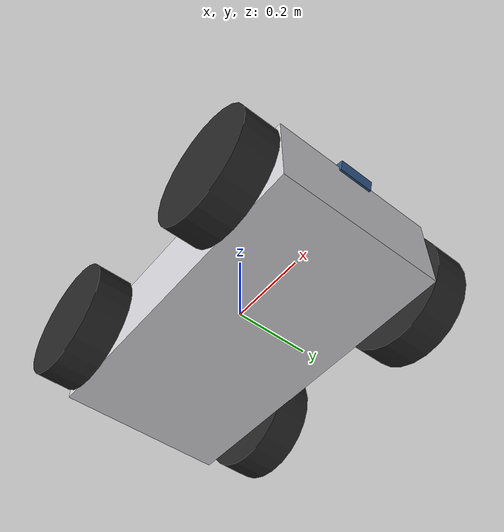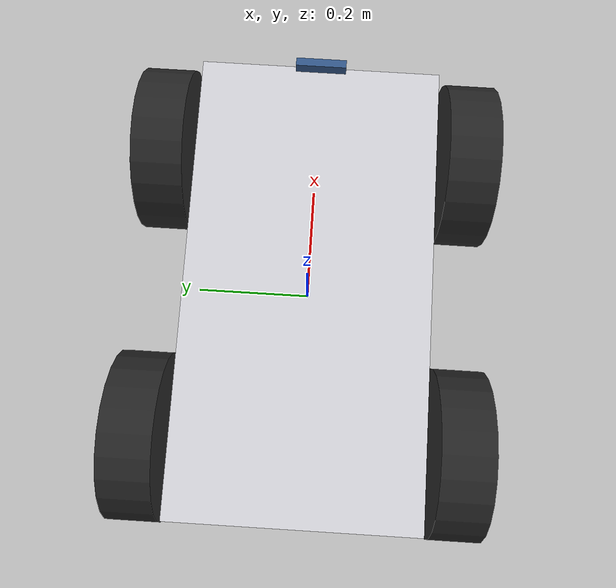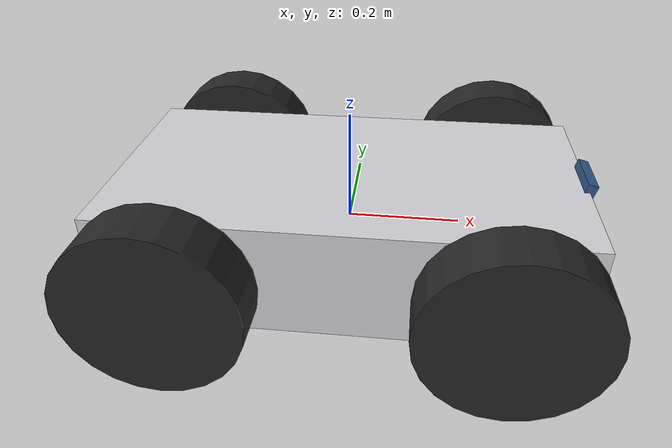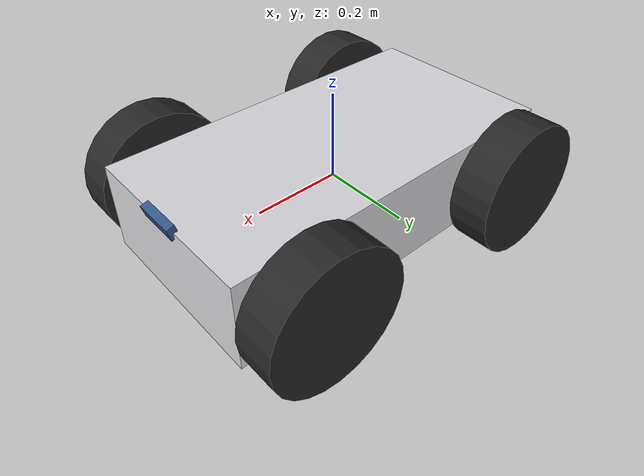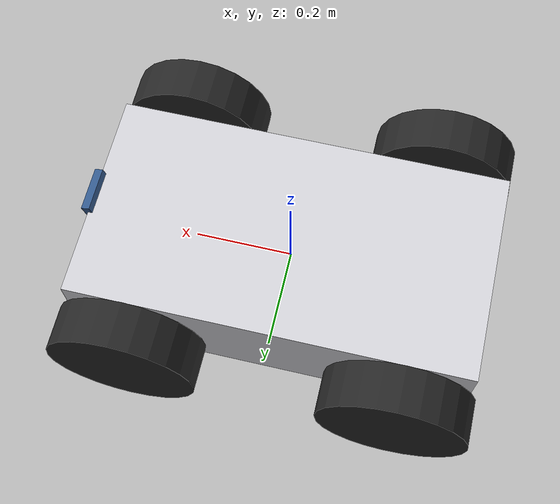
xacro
<?xml version="1.0"?>
<robot xmlns:xacro="http://www.ros.org/wiki/xacro" name="lunabot">

  <!-- Which hardware_interface plugin to instantiate: real | mock | sim.
       Defaults to mock so that a bare `xacro lunabot.urdf.xacro` produces
       something that runs anywhere, including CI. -->
  <xacro:arg name="hardware" default="mock"/>

  <!-- SocketCAN device. Use vcan0 to exercise the real plugin without
       motors attached - see docs/HARDWARE_CAN.md. -->
  <xacro:arg name="can_interface" default="can0"/>

  <!-- Frame/joint name prefix, for multi-robot or namespaced setups.
       Empty in every current configuration. -->
  <xacro:arg name="prefix" default=""/>

  <!-- Set false to get geometry and TF only, with no controller stack.
       Useful for `ros2 launch ... description.launch.py` when you just
       want to look at the model. -->
  <xacro:arg name="use_ros2_control" default="true"/>

  <!-- Topics bridging ros2_control to Isaac. Must match the OmniGraph
       nodes built in lunabot_sim/graphs/joints.py. -->
  <xacro:arg name="sim_joint_states_topic"   default="/isaac/joint_states"/>
  <xacro:arg name="sim_joint_commands_topic" default="/isaac/joint_commands"/>

  <xacro:include filename="$(find lunabot_description)/urdf/common/properties.xacro"/>
  <xacro:include filename="$(find lunabot_description)/urdf/common/inertials.xacro"/>
  <xacro:include filename="$(find lunabot_description)/urdf/common/materials.xacro"/>
  <xacro:include filename="$(find lunabot_description)/urdf/chassis.xacro"/>
  <xacro:include filename="$(find lunabot_description)/urdf/wheel.xacro"/>
  <xacro:include filename="$(find lunabot_description)/urdf/sensors/oak_d_s2.xacro"/>
  <xacro:include filename="$(find lunabot_description)/urdf/ros2_control/lunabot.ros2_control.xacro"/>

  <xacro:property name="prefix" value="$(arg prefix)"/>

  <!-- ==================== Body ==================== -->
  <xacro:lunabot_chassis prefix="${prefix}"/>

  <xacro:lunabot_wheel prefix="${prefix}" name="front_left"  side="left"
                       x_offset="${wheel_base / 2.0}"/>
  <xacro:lunabot_wheel prefix="${prefix}" name="front_right" side="right"
                       x_offset="${wheel_base / 2.0}"/>
  <!-- FOUR-WHEEL branch: no middle axle. -->
  <xacro:lunabot_wheel prefix="${prefix}" name="rear_left"   side="left"
                       x_offset="${-wheel_base / 2.0}"/>
  <xacro:lunabot_wheel prefix="${prefix}" name="rear_right"  side="right"
                       x_offset="${-wheel_base / 2.0}"/>

  <xacro:oak_d_s2 prefix="${prefix}" parent="${prefix}base_link">
    <origin xyz="${oak_d_mount_x} ${oak_d_mount_y} ${oak_d_mount_z}"
            rpy="0 ${oak_d_mount_pitch} 0"/>
  </xacro:oak_d_s2>

  <!-- ==================== Control ==================== -->
  <xacro:if value="$(arg use_ros2_control)">
    <xacro:lunabot_ros2_control
      name="LunabotSystem"
      hardware="$(arg hardware)"
      can_interface="$(arg can_interface)"
      sim_joint_states_topic="$(arg sim_joint_states_topic)"
      sim_joint_commands_topic="$(arg sim_joint_commands_topic)"/>
  </xacro:if>

</robot>

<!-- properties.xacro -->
<robot xmlns:xacro="http://www.ros.org/wiki/xacro">

  <!-- ==================== Chassis ==================== -->
  <!-- Body box. base_link sits at its geometric centre, at axle height. -->
  <!-- design: 32 x 17 in frame of 2 x 1 in 6061 tube, centred over the axles -->
  <xacro:property name="chassis_length" value="0.813"/>  <!-- X, fore-aft -->
  <xacro:property name="chassis_width"  value="0.432"/>  <!-- Y, lateral  -->
  <xacro:property name="chassis_height" value="0.20"/>
  <!-- design: 32.3 kg dry, less four 0.85 kg wheels. Includes the drum,
       hopper and actuators, which the description does not model yet. -->
  <xacro:property name="chassis_mass"   value="28.9"/>   <!-- kg, everything but wheels -->

  <!-- ==================== Wheels ==================== -->
  <xacro:property name="wheel_radius"    value="0.15"/>
  <xacro:property name="wheel_width"     value="0.09"/>
  <xacro:property name="wheel_mass"      value="0.85"/>

  <!-- design: wheel centreplanes at +-0.277 m -->
  <xacro:property name="wheel_separation" value="0.554"/>

  <!-- Fore-aft distance between the front and rear axles. Does not enter
       the differential kinematics; it sets where the wheels are drawn and
       how the robot behaves in sim contact. -->
  <xacro:property name="wheel_base" value="0.54"/>

  <xacro:property name="com_behind_front_axle" value="0.16"/>
  <xacro:property name="chassis_com_x"
                  value="${(wheel_base / 2.0 - com_behind_front_axle) * (chassis_mass + 4 * wheel_mass) / chassis_mass}"/>

  <xacro:property name="wheel_drop" value="0.015"/>

  <!-- ==================== OAK-D S2 ==================== -->
  <!-- Enclosure, from the Luxonis datasheet. VERIFY against your unit. -->
  <xacro:property name="oak_d_length" value="0.0175"/>   <!-- X, depth   -->
  <xacro:property name="oak_d_width"  value="0.091"/>    <!-- Y, width   -->
  <xacro:property name="oak_d_height" value="0.028"/>    <!-- Z, height  -->
  <xacro:property name="oak_d_mass"   value="0.061"/>

  <!-- Stereo baseline: left-to-right mono camera separation, 7.5 cm on the
       S2. This is a real optical constant, not a placeholder - getting it
       wrong scales every depth measurement. -->
  <xacro:property name="oak_d_baseline" value="0.075"/>

  <xacro:property name="oak_d_mount_x"     value="${chassis_length / 2.0}"/>
  <xacro:property name="oak_d_mount_y"     value="0.0"/>
  <xacro:property name="oak_d_mount_z"     value="${chassis_height / 2.0}"/>
  <xacro:property name="oak_d_mount_pitch" value="0.2618"/>   <!-- 15 deg down -->

  <xacro:property name="oak_d_rgb_offset_y" value="0.0"/>
  <xacro:property name="oak_d_imu_offset_y" value="-0.030"/>

  <!-- ==================== Drivetrain limits ==================== -->
  <xacro:property name="max_wheel_rad_s" value="16.0"/>
  <xacro:property name="gear_ratio"      value="20.0"/>

  <xacro:property name="max_wheel_effort" value="40.0"/>

  <!-- Duty cycle ceiling. Carried over from the 2026 robot, where it was
       max_duty_cycle:=0.8. Headroom for the controller and mercy for the
       gearboxes. -->
  <xacro:property name="max_duty_cycle" value="0.8"/>

  <!-- Motor output ramp, seconds from 0 to full. Carried over from the 2026
       drive node (SetRampRate(0.1)); it is what stopped the rover from
       shock-loading its gearboxes on a step command. -->
  <xacro:property name="ramp_rate" value="0.1"/>

</robot>

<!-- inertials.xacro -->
<robot xmlns:xacro="http://www.ros.org/wiki/xacro">

  <xacro:macro name="box_inertia" params="mass x y z *origin">
    <inertial>
      <xacro:insert_block name="origin"/>
      <mass value="${mass}"/>
      <inertia
        ixx="${mass * (y*y + z*z) / 12.0}" ixy="0.0" ixz="0.0"
        iyy="${mass * (x*x + z*z) / 12.0}" iyz="0.0"
        izz="${mass * (x*x + y*y) / 12.0}"/>
    </inertial>
  </xacro:macro>

  <xacro:macro name="cylinder_inertia" params="mass radius length *origin">
    <inertial>
      <xacro:insert_block name="origin"/>
      <mass value="${mass}"/>
      <inertia
        ixx="${mass * (3.0*radius*radius + length*length) / 12.0}" ixy="0.0" ixz="0.0"
        iyy="${mass * (3.0*radius*radius + length*length) / 12.0}" iyz="0.0"
        izz="${mass * radius * radius / 2.0}"/>
    </inertial>
  </xacro:macro>

  <xacro:macro name="sphere_inertia" params="mass radius *origin">
    <inertial>
      <xacro:insert_block name="origin"/>
      <mass value="${mass}"/>
      <inertia
        ixx="${2.0 * mass * radius * radius / 5.0}" ixy="0.0" ixz="0.0"
        iyy="${2.0 * mass * radius * radius / 5.0}" iyz="0.0"
        izz="${2.0 * mass * radius * radius / 5.0}"/>
    </inertial>
  </xacro:macro>

</robot>

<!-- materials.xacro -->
<robot xmlns:xacro="http://www.ros.org/wiki/xacro">

  <material name="lunabot_chassis">
    <color rgba="0.85 0.85 0.87 1.0"/>
  </material>

  <material name="lunabot_wheel">
    <color rgba="0.15 0.15 0.15 1.0"/>
  </material>

  <material name="lunabot_sensor">
    <color rgba="0.20 0.35 0.55 1.0"/>
  </material>

</robot>

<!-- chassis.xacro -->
<robot xmlns:xacro="http://www.ros.org/wiki/xacro">

  <xacro:macro name="lunabot_chassis" params="prefix">

    <link name="${prefix}base_link">
      <visual>
        <origin xyz="0 0 0" rpy="0 0 0"/>
        <geometry>
          <box size="${chassis_length} ${chassis_width} ${chassis_height}"/>
        </geometry>
        <material name="lunabot_chassis"/>
      </visual>

      <collision>
        <origin xyz="0 0 0" rpy="0 0 0"/>
        <geometry>
          <box size="${chassis_length} ${chassis_width} ${chassis_height}"/>
        </geometry>
      </collision>

      <xacro:box_inertia mass="${chassis_mass}"
                         x="${chassis_length}" y="${chassis_width}" z="${chassis_height}">
        <origin xyz="${chassis_com_x} 0 0" rpy="0 0 0"/>
      </xacro:box_inertia>
    </link>

    <!-- Ground projection. Massless and geometry-free on purpose: it is a
         coordinate frame, not a body. Giving it inertia would add a phantom
         link to the articulation in sim. -->
    <link name="${prefix}base_footprint"/>

    <joint name="${prefix}base_footprint_joint" type="fixed">
      <parent link="${prefix}base_link"/>
      <child  link="${prefix}base_footprint"/>
      <origin xyz="0 0 ${-wheel_radius}" rpy="0 0 0"/>
    </joint>

  </xacro:macro>

</robot>

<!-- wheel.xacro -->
<robot xmlns:xacro="http://www.ros.org/wiki/xacro">

  <xacro:macro name="lunabot_wheel" params="prefix name side x_offset z_offset:=0">

    <xacro:property name="y_sign" value="${1 if side == 'left' else -1}"/>
    <xacro:property name="y_offset" value="${y_sign * wheel_separation / 2.0}"/>

    <link name="${prefix}${name}_wheel_link">
      <visual>
        <origin xyz="0 0 0" rpy="${pi/2} 0 0"/>
        <geometry>
          <cylinder radius="${wheel_radius}" length="${wheel_width}"/>
        </geometry>
        <material name="lunabot_wheel"/>
      </visual>

      <collision>
        <origin xyz="0 0 0" rpy="${pi/2} 0 0"/>
        <geometry>
          <cylinder radius="${wheel_radius}" length="${wheel_width}"/>
        </geometry>
      </collision>

      <xacro:cylinder_inertia mass="${wheel_mass}"
                              radius="${wheel_radius}" length="${wheel_width}">
        <origin xyz="0 0 0" rpy="${pi/2} 0 0"/>
      </xacro:cylinder_inertia>
    </link>

    <joint name="${prefix}${name}_wheel_joint" type="continuous">
      <parent link="${prefix}base_link"/>
      <child  link="${prefix}${name}_wheel_link"/>
      <origin xyz="${x_offset} ${y_offset} ${z_offset}" rpy="0 0 0"/>
      <axis xyz="0 1 0"/>
      <dynamics damping="0.05" friction="0.1"/>
      <limit effort="${max_wheel_effort}" velocity="${max_wheel_rad_s}"/>
    </joint>

  </xacro:macro>

</robot>

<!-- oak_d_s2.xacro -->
<robot xmlns:xacro="http://www.ros.org/wiki/xacro">

  <xacro:macro name="oak_d_s2" params="prefix parent *origin">

    <link name="${prefix}oak_d_link">
      <visual>
        <origin xyz="0 0 0" rpy="0 0 0"/>
        <geometry>
          <box size="${oak_d_length} ${oak_d_width} ${oak_d_height}"/>
        </geometry>
        <material name="lunabot_sensor"/>
      </visual>

      <collision>
        <origin xyz="0 0 0" rpy="0 0 0"/>
        <geometry>
          <box size="${oak_d_length} ${oak_d_width} ${oak_d_height}"/>
        </geometry>
      </collision>

      <xacro:box_inertia mass="${oak_d_mass}"
                         x="${oak_d_length}" y="${oak_d_width}" z="${oak_d_height}">
        <origin xyz="0 0 0" rpy="0 0 0"/>
      </xacro:box_inertia>
    </link>

    <joint name="${prefix}oak_d_mount_joint" type="fixed">
      <parent link="${parent}"/>
      <child  link="${prefix}oak_d_link"/>
      <xacro:insert_block name="origin"/>
    </joint>

    <!-- ==================== Sensor frames ==================== -->

    <!-- RGB -->
    <link name="${prefix}oak_d_rgb_camera_frame"/>
    <joint name="${prefix}oak_d_rgb_camera_joint" type="fixed">
      <parent link="${prefix}oak_d_link"/>
      <child  link="${prefix}oak_d_rgb_camera_frame"/>
      <origin xyz="0 ${oak_d_rgb_offset_y} 0" rpy="0 0 0"/>
    </joint>

    <link name="${prefix}oak_d_rgb_camera_optical_frame"/>
    <joint name="${prefix}oak_d_rgb_camera_optical_joint" type="fixed">
      <parent link="${prefix}oak_d_rgb_camera_frame"/>
      <child  link="${prefix}oak_d_rgb_camera_optical_frame"/>
      <origin xyz="0 0 0" rpy="${-pi/2} 0 ${-pi/2}"/>
    </joint>

    <!-- Left mono. The stereo baseline is measured between these two, and
         depth is computed in the LEFT camera's frame by the OAK-D. -->
    <link name="${prefix}oak_d_left_camera_frame"/>
    <joint name="${prefix}oak_d_left_camera_joint" type="fixed">
      <parent link="${prefix}oak_d_link"/>
      <child  link="${prefix}oak_d_left_camera_frame"/>
      <origin xyz="0 ${oak_d_baseline / 2.0} 0" rpy="0 0 0"/>
    </joint>

    <link name="${prefix}oak_d_left_camera_optical_frame"/>
    <joint name="${prefix}oak_d_left_camera_optical_joint" type="fixed">
      <parent link="${prefix}oak_d_left_camera_frame"/>
      <child  link="${prefix}oak_d_left_camera_optical_frame"/>
      <origin xyz="0 0 0" rpy="${-pi/2} 0 ${-pi/2}"/>
    </joint>

    <!-- Right mono -->
    <link name="${prefix}oak_d_right_camera_frame"/>
    <joint name="${prefix}oak_d_right_camera_joint" type="fixed">
      <parent link="${prefix}oak_d_link"/>
      <child  link="${prefix}oak_d_right_camera_frame"/>
      <origin xyz="0 ${-oak_d_baseline / 2.0} 0" rpy="0 0 0"/>
    </joint>

    <link name="${prefix}oak_d_right_camera_optical_frame"/>
    <joint name="${prefix}oak_d_right_camera_optical_joint" type="fixed">
      <parent link="${prefix}oak_d_right_camera_frame"/>
      <child  link="${prefix}oak_d_right_camera_optical_frame"/>
      <origin xyz="0 0 0" rpy="${-pi/2} 0 ${-pi/2}"/>
    </joint>

    <link name="${prefix}oak_d_imu_frame"/>
    <joint name="${prefix}oak_d_imu_joint" type="fixed">
      <parent link="${prefix}oak_d_link"/>
      <child  link="${prefix}oak_d_imu_frame"/>
      <origin xyz="0 ${oak_d_imu_offset_y} 0" rpy="0 0 0"/>
    </joint>

  </xacro:macro>

</robot>
